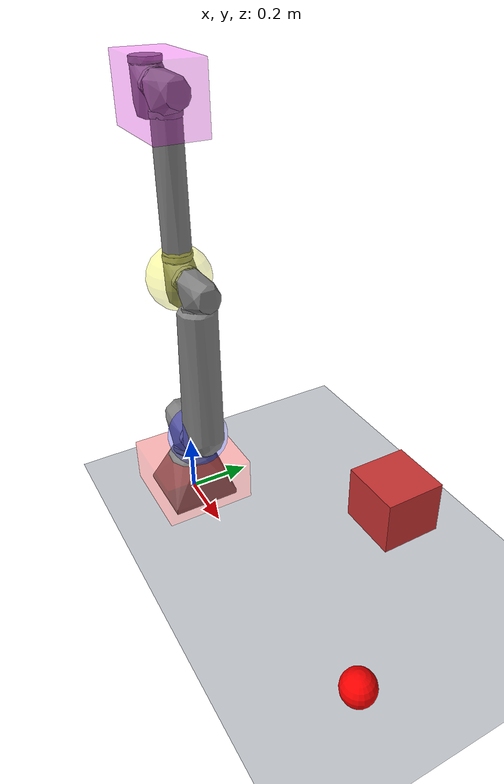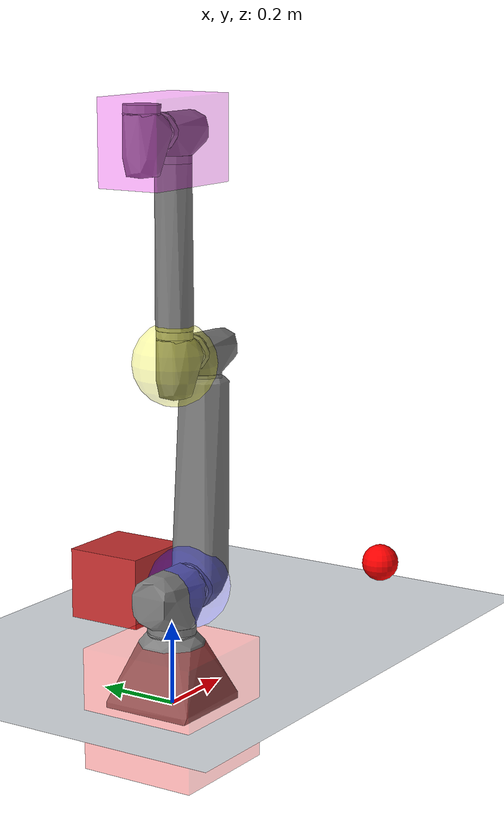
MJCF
<mujoco model="robco">
  <compiler angle="radian"/>

  <default>
    <joint damping="1.0" armature="0.1"/>
    <motor ctrllimited="true" ctrlrange="-1 1"/>
  </default>

  <asset>
    <!-- Textures and materials for the ground plane -->
    <texture name="texplane" type="2d" builtin="checker" rgb1=".2 .3 .4" rgb2=".1 .15 .2" width="512" height="512" mark="cross" markrgb=".8 .8 .8"/>
    <material name="matplane" reflectance="0.3" texture="texplane" texrepeat="1 1" texuniform="true"/>

    <!-- Robot mesh assets -->
    <mesh name="BD116_proximal_part_convdec" content_type="model/stl" file="assets/BD116_proximal_part_convdec.stl"/>
    <mesh name="BD116_distal_part_convdec" content_type="model/stl" file="assets/BD116_distal_part_convdec.stl"/>
    <mesh name="C116_convdec" content_type="model/stl" file="assets/C116_convdec.stl"/>
    <mesh name="D116-876.0002-G-proximal_convdec" content_type="model/stl" file="assets/D116-876.0002-G-proximal_convdec.stl"/>
    <mesh name="D116-876.0002-G-distal_convdec" content_type="model/stl" file="assets/D116-876.0002-G-distal_convdec.stl"/>
    <mesh name="L116-500_convdec" content_type="model/stl" file="assets/L116-500_convdec.stl"/>
    <mesh name="C86_convdec" content_type="model/stl" file="assets/C86_convdec.stl"/>
    <mesh name="D86-876.0001-H-proximal_convdec" content_type="model/stl" file="assets/D86-876.0001-H-proximal_convdec.stl"/>
    <mesh name="D86-876.0001-H-distal_convdec" content_type="model/stl" file="assets/D86-876.0001-H-distal_convdec.stl"/>
    <mesh name="I86-400_convdec" content_type="model/stl" file="assets/I86-400_convdec.stl"/>
  </asset>

  <worldbody>
    <!-- Lighting -->
    <light directional="true" ambient="0.2 0.2 0.2" diffuse="0.8 0.8 0.8" specular="0.3 0.3 0.3" pos="0 0 4" dir="0 0 -1"/>
    <light directional="true" ambient="0.1 0.1 0.1" diffuse="0.4 0.4 0.4" specular="0.1 0.1 0.1" pos="2 2 3" dir="-1 -1 -1"/>

    <!-- Ground plane -->
    <geom name="floor" pos="0 0 0" size="0 0 0.05" type="plane" material="matplane"/>
    <geom type="mesh" mesh="BD116_proximal_part_convdec" contype="0" conaffinity="0"/>
    <geom name="joint0_collision" type="box" size="0.15 0.15 0.15" pos="0 0 0" rgba="1 0 0 0.3" contype="1" conaffinity="1"/> <!-- red -->
    <!-- Target object for reaching task -->
    <body name="target" pos="1 0 0.1">
      <geom type="sphere" size="0.05" rgba="1 0 0 1" contype="0" conaffinity="0"/>
    </body>
    <!-- Moveable box object -->
    <body name="box_object" pos="0.5 0.5 0.095">
      <freejoint/>
      <inertial pos="0 0 0" mass="0.25" diaginertia="0.001671 0.001671 0.001838"/>
      <geom name="box_geom" type="box" size="0.105 0.105 0.095" rgba="0.8 0.2 0.2 1" condim="3" friction="0.35"/>
    </body>
    <body name="joint0_distal" pos="0 0 0.1887">
      <inertial pos="0.00621845 0.000265818 0.0535059" quat="0.73903 0.0245332 0.0293139 0.672587" mass="4.1622" diaginertia="0.0429894 0.042189 0.00873913"/>
      <joint name="joint0_joint" pos="0 0 0" axis="0 0 1" range="-4.7124 4.7124"/>
      <geom type="mesh" mesh="BD116_distal_part_convdec" contype="0" conaffinity="0"/>
      <geom type="mesh" mesh="C116_convdec" contype="0" conaffinity="0"/>
      <geom type="mesh" mesh="D116-876.0002-G-proximal_convdec" contype="0" conaffinity="0"/>
      <body name="joint1_distal" pos="0.0702 0 0.082" quat="0 0.707107 0 0.707107">
        <inertial pos="0.106613 0.185781 0.0844217" quat="0.230033 0.593444 -0.414361 0.650549" mass="4.74208" diaginertia="0.528787 0.386972 0.222957"/>
        <joint name="joint1_joint" pos="0 0 0" axis="0 0 1" range="-4.7124 4.7124"/>
        <geom type="mesh" mesh="D116-876.0002-G-distal_convdec" contype="0" conaffinity="0"/>
        <geom type="mesh" mesh="C116_convdec" contype="0" conaffinity="0"/>
        <geom type="mesh" mesh="L116-500_convdec" contype="0" conaffinity="0"/>
        <geom name="joint1_collision" type="sphere" size="0.1 0.1" pos="0.0 0 0.0" rgba="0 0 1 0.3" contype="1" conaffinity="1"/> <!-- blue -->
        <geom pos="0.5 0 0.068" quat="0.707107 0 0.707107 0" type="mesh" mesh="C86_convdec" contype="0" conaffinity="0"/>
        <geom pos="0.5 0 0.068" quat="0.707107 0 0.707107 0" type="mesh" mesh="D86-876.0001-H-proximal_convdec" contype="0" conaffinity="0"/>
        <body name="joint2_distal" pos="0.564 0 0.0128" quat="0 1 0 0">
          <inertial pos="-0.0016138 0.00021641 0.047885" quat="0.719232 -0.0147998 -0.0123681 0.694502" mass="2.0708" diaginertia="0.0112523 0.0104514 0.00301799"/>
          <joint name="joint2_joint" pos="0 0 0" axis="0 0 1" range="-4.7124 4.7124"/>
          <geom type="mesh" mesh="D86-876.0001-H-distal_convdec" contype="0" conaffinity="0"/>
          <geom type="mesh" mesh="C86_convdec" contype="0" conaffinity="0"/>
          <geom type="mesh" mesh="D86-876.0001-H-proximal_convdec" contype="0" conaffinity="0"/>
          <body name="joint3_distal" pos="0.0552 0 0.064" quat="0 0.707107 0 0.707107">
            <inertial pos="-0.00990896 -0.0127434 0.310235" quat="0.998596 -0.0505537 -0.0158118 0.00064432" mass="3.3876" diaginertia="0.186582 0.170909 0.020963"/>
            <joint name="joint3_joint" pos="0 0 0" axis="0 0 1" range="-4.7124 4.7124"/>
            <geom type="mesh" mesh="D86-876.0001-H-distal_convdec" contype="0" conaffinity="0"/>
            <geom type="mesh" mesh="C86_convdec" contype="0" conaffinity="0"/>
            <geom type="mesh" mesh="I86-400_convdec" contype="0" conaffinity="0"/>
            <geom name="joint3_collision" type="sphere" size="0.1 0.1" pos="0 0 -0.07" rgba="1 1 0 0.3" contype="1" conaffinity="1"/> <!-- yellow -->
            <geom pos="0 0 0.4" quat="1 0 0 0" type="mesh" mesh="C86_convdec" contype="0" conaffinity="0"/>
            <geom pos="0 0 0.4" quat="1 0 0 0" type="mesh" mesh="D86-876.0001-H-proximal_convdec" contype="0" conaffinity="0"/>
            <body name="joint4_distal" pos="0.0552 0 0.464" quat="0 0.707107 0 0.707107">
              <inertial pos="-0.0016138 0.00021641 0.047885" quat="0.719232 -0.0147998 -0.0123681 0.694502" mass="2.0708" diaginertia="0.0112523 0.0104514 0.00301799"/>
              <joint name="joint4_joint" pos="0 0 0" axis="0 0 1" range="-4.7124 4.7124"/>
              <geom type="mesh" mesh="D86-876.0001-H-distal_convdec" contype="0" conaffinity="0"/>
              <geom type="mesh" mesh="C86_convdec" contype="0" conaffinity="0"/>
              <geom type="mesh" mesh="D86-876.0001-H-proximal_convdec" contype="0" conaffinity="0"/>
              <geom name="joint4_collision" type="box" size="0.1 0.08 0.14" pos="-0.02 0 -0.02" rgba="1 0 1 0.3" contype="1" conaffinity="1"/> <!-- magenta -->
              <!-- magenta -->
              <body name="joint5_distal" pos="0.0552 0 0.064" quat="0 0.707107 0 0.707107">
                <inertial pos="8.1887e-05 0.00021863 0.0169912" quat="0.996955 -0.00209442 0.00119539 -0.077939" mass="0.772831" diaginertia="0.00217087 0.00212511 0.000873867"/>
                <joint name="joint5_joint" pos="0 0 0" axis="0 0 1" range="-4.7124 4.7124"/>
                <geom type="mesh" mesh="D86-876.0001-H-distal_convdec" contype="0" conaffinity="0"/>
                <geom type="mesh" mesh="C86_convdec" contype="0" conaffinity="0"/>
                <!-- magenta -->
              </body>
            </body>
          </body>
        </body>
      </body>
    </body>
  </worldbody>

  <sensor>
    <!-- Self-collision sensors between non-adjacent robot parts -->
    <contact name="joint0_joint4_found" geom1="joint0_collision" geom2="joint4_collision" reduce="mindist" num="1" data="found"/>
    <contact name="joint1_joint4_found" geom1="joint1_collision" geom2="joint4_collision" reduce="mindist" num="1" data="found"/>

    <!-- Ground collision sensors -->
    <contact name="joint3_floor_found" geom1="joint3_collision" geom2="floor" reduce="mindist" num="1" data="found"/>
    <contact name="joint4_floor_found" geom1="joint4_collision" geom2="floor" reduce="mindist" num="1" data="found"/>
  </sensor>

  <actuator>
      <motor name="joint0_joint_ctrl" joint="joint0_joint" gear="150" ctrllimited="true" ctrlrange="-1 1"/>
      <motor name="joint1_joint_ctrl" joint="joint1_joint" gear="250" ctrllimited="true" ctrlrange="-1 1"/>
      <motor name="joint2_joint_ctrl" joint="joint2_joint" gear="150" ctrllimited="true" ctrlrange="-1 1"/>

      <motor name="joint3_joint_ctrl" joint="joint3_joint" gear="60" ctrllimited="true" ctrlrange="-1 1"/>
      <motor name="joint4_joint_ctrl" joint="joint4_joint" gear="60" ctrllimited="true" ctrlrange="-1 1"/>

      <motor name="joint5_joint_ctrl" joint="joint5_joint" gear="20" ctrllimited="true" ctrlrange="-1 1"/>
    </actuator>
</mujoco>
